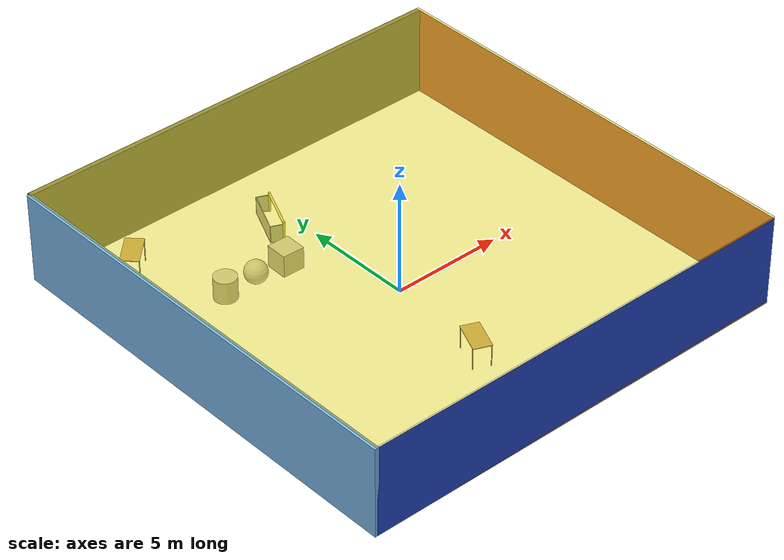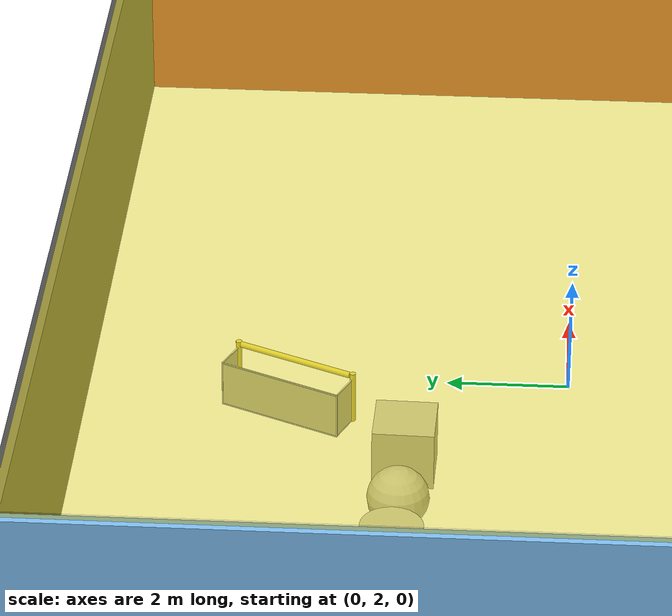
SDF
<sdf version="1.4">
 <world name="default">
  <physics type="ode">
   <max_step_size>0.001</max_step_size>
   <real_time_factor>1</real_time_factor>
   <real_time_update_rate>1000</real_time_update_rate>
   <gravity>0 0 -9.8</gravity>
  </physics>
  <scene><ambient>0.4 0.4 0.4 1</ambient><background>0.7 0.7 0.7 1</background><shadows>1</shadows></scene>
  <model name="Surrounding">
   <static>1</static>
   <link name="Ceiling">
    <collision name="Ceiling_Collision"><geometry><box><size>20 20 0.1</size></box></geometry></collision>
    <visual name="Ceiling_Visual">
     <geometry><box><size>20 20 0.1</size></box></geometry>
     <material>
      <script>
       <uri>file://media/materials/scripts/gazebo.material</uri>
       <name>Gazebo/YellowTransparent</name>
      </script>
     </material>
    </visual>
    <pose>0 0 4.05 0 0 0</pose>
   </link>
   <link name="Wall_South">
    <collision name="Wall_South_Collision">
     <geometry><box><size>20 0 4</size></box></geometry>
     <pose>0 0 2 0 -0 0</pose>
    </collision>
    <visual name="Wall_South_Visual">
     <pose>0 0 2 0 -0 0</pose>
     <geometry><box><size>20 0 4</size></box></geometry>
     <material>
      <script><uri>file://media/materials/scripts/gazebo.material</uri><name>Gazebo/BlueLaser</name></script>
     </material>
    </visual>
    <velocity_decay><linear>0</linear><angular>0</angular></velocity_decay>
    <pose>0 -10 0 0 -0 0</pose>
   </link>
   <link name="Wall_East">
    <collision name="Wall_21_Collision">
     <geometry><box><size>20 0 4</size></box></geometry>
     <pose>0 0 2 0 -0 0</pose>
    </collision>
    <visual name="Wall_21_Visual">
     <pose>0 0 2 0 -0 0</pose>
     <geometry><box><size>20 0 4</size></box></geometry>
     <material>
      <script><uri>file://media/materials/scripts/gazebo.material</uri><name>Gazebo/Red</name></script>
     </material>
    </visual>
    <velocity_decay><linear>0</linear><angular>0</angular></velocity_decay>
    <pose>10 0 0 0 -0 1.5708</pose>
   </link>
   <link name="Wall_North">
    <collision name="Wall_22_Collision">
     <geometry><box><size>20 0.2 4</size></box></geometry>
     <pose>0 0 2 0 -0 0</pose>
    </collision>
    <visual name="Wall_22_Visual">
     <pose>0 0 2 0 -0 0</pose>
     <geometry><box><size>20 0.2 4</size></box></geometry>
     <material>
      <script><uri>file://media/materials/scripts/gazebo.material</uri><name>Gazebo/DarkGrey</name></script>
     </material>
    </visual>
    <velocity_decay><linear>0</linear><angular>0</angular></velocity_decay>
    <pose>0 10 0 0 -0 0</pose>
   </link>
   <link name="Wall_West">
    <collision name="Wall_23_Collision">
     <geometry><box><size>20 0.2 4</size></box></geometry>
     <pose>0 0 2 0 -0 0</pose>
    </collision>
    <visual name="Wall_23_Visual">
     <pose>0 0 2 0 -0 0</pose>
     <geometry><box><size>20 0.2 4</size></box></geometry>
     <material>
      <script><uri>file://media/materials/scripts/gazebo.material</uri><name>Gazebo/SkyBlue</name></script>
     </material>
    </visual>
    <velocity_decay><linear>0</linear><angular>0</angular></velocity_decay>
    <pose>-10 0 0 0 0 -1.5708</pose>
   </link>
   <link name="Ground_link">
    <collision name="collision">
     <pose>0 0 .05 0 -0 0</pose>
     <geometry><box><size>20 20 0.1</size></box></geometry>
    </collision>
    <visual name="visual">
     <pose>0 0 .05 0 -0 0</pose>
     <geometry><box><size>20 20 0.1</size></box></geometry>
     <material>
      <script>
       <uri>file://media/materials/scripts/gazebo.material</uri>
       <name>Gazebo/OrangeTransparent</name>
      </script>
     </material>
    </visual>
   </link>
   <static>1</static>
  </model>
  <spherical_coordinates>
   <surface_model>EARTH_WGS84</surface_model>
   <latitude_deg>0</latitude_deg>
   <longitude_deg>0</longitude_deg>
   <elevation>0</elevation>
   <heading_deg>0</heading_deg>
  </spherical_coordinates>
  <light name="lightball_0" type="diffuse">
   <diffuse>0.8 0.8 0.8 1</diffuse>
   <specular>0.2 0.2 0.2 1</specular>
   <attenuation>
    <range>100</range>
    <constant>0.7</constant>
    <linear>0.01</linear>
    <quadratic>0.001</quadratic>
   </attenuation>
   <direction>-0.5 0.1 -0.9</direction>
   <pose>-2.04815512258 2.62135242565 3.56098367969 0 0 0</pose>
  </light>
  <light name="lightball_1" type="diffuse">
   <diffuse>0.8 0.8 0.8 1</diffuse>
   <specular>0.2 0.2 0.2 1</specular>
   <attenuation>
    <range>100</range>
    <constant>0.7</constant>
    <linear>0.01</linear>
    <quadratic>0.001</quadratic>
   </attenuation>
   <direction>-0.5 0.1 -0.9</direction>
   <pose>7.38648748695 -4.45735627577 2.44099372635 0 0 0</pose>
  </light>
  <light name="lightball_2" type="diffuse">
   <diffuse>0.8 0.8 0.8 1</diffuse>
   <specular>0.2 0.2 0.2 1</specular>
   <attenuation>
    <range>100</range>
    <constant>0.7</constant>
    <linear>0.01</linear>
    <quadratic>0.001</quadratic>
   </attenuation>
   <direction>-0.5 0.1 -0.9</direction>
   <pose>-2.62832832213 -7.83274261538 1.82869781187 0 0 0</pose>
  </light>
  <light name="lightball_3" type="diffuse">
   <diffuse>0.8 0.8 0.8 1</diffuse>
   <specular>0.2 0.2 0.2 1</specular>
   <attenuation>
    <range>100</range>
    <constant>0.7</constant>
    <linear>0.01</linear>
    <quadratic>0.001</quadratic>
   </attenuation>
   <direction>-0.5 0.1 -0.9</direction>
   <pose>8.67669815024 -0.00433558313524 0.612967910002 0 0 0</pose>
  </light>
  <light name="lightball_4" type="diffuse">
   <diffuse>0.8 0.8 0.8 1</diffuse>
   <specular>0.2 0.2 0.2 1</specular>
   <attenuation>
    <range>100</range>
    <constant>0.7</constant>
    <linear>0.01</linear>
    <quadratic>0.001</quadratic>
   </attenuation>
   <direction>-0.5 0.1 -0.9</direction>
   <pose>1.04313499885 -0.63495099771 0.567227123398 0 0 0</pose>
  </light>
  <light name="lightball_5" type="diffuse">
   <diffuse>0.8 0.8 0.8 1</diffuse>
   <specular>0.2 0.2 0.2 1</specular>
   <attenuation>
    <range>100</range>
    <constant>0.7</constant>
    <linear>0.01</linear>
    <quadratic>0.001</quadratic>
   </attenuation>
   <direction>-0.5 0.1 -0.9</direction>
   <pose>-4.37704662416 5.08484236982 2.41175693146 0 0 0</pose>
  </light>
  <light name="lightball_6" type="diffuse">
   <diffuse>0.8 0.8 0.8 1</diffuse>
   <specular>0.2 0.2 0.2 1</specular>
   <attenuation>
    <range>100</range>
    <constant>0.7</constant>
    <linear>0.01</linear>
    <quadratic>0.001</quadratic>
   </attenuation>
   <direction>-0.5 0.1 -0.9</direction>
   <pose>9.07037353625 5.55146114087 0.967175226539 0 0 0</pose>
  </light>
  <light name="lightball_7" type="diffuse">
   <diffuse>0.8 0.8 0.8 1</diffuse>
   <specular>0.2 0.2 0.2 1</specular>
   <attenuation>
    <range>100</range>
    <constant>0.7</constant>
    <linear>0.01</linear>
    <quadratic>0.001</quadratic>
   </attenuation>
   <direction>-0.5 0.1 -0.9</direction>
   <pose>-7.68812069249 3.41669696024 2.47993697893 0 0 0</pose>
  </light>
  <light name="lightball_8" type="diffuse">
   <diffuse>0.8 0.8 0.8 1</diffuse>
   <specular>0.2 0.2 0.2 1</specular>
   <attenuation>
    <range>100</range>
    <constant>0.7</constant>
    <linear>0.01</linear>
    <quadratic>0.001</quadratic>
   </attenuation>
   <direction>-0.5 0.1 -0.9</direction>
   <pose>-0.597113550727 6.11395328463 1.24550516984 0 0 0</pose>
  </light>
  <light name="lightball_9" type="diffuse">
   <diffuse>0.8 0.8 0.8 1</diffuse>
   <specular>0.2 0.2 0.2 1</specular>
   <attenuation>
    <range>100</range>
    <constant>0.7</constant>
    <linear>0.01</linear>
    <quadratic>0.001</quadratic>
   </attenuation>
   <direction>-0.5 0.1 -0.9</direction>
   <pose>4.40757137029 -4.93270432133 3.09897604733 0 0 0</pose>
  </light>
  <light name="lightball_10" type="diffuse">
   <diffuse>0.8 0.8 0.8 1</diffuse>
   <specular>0.2 0.2 0.2 1</specular>
   <attenuation>
    <range>100</range>
    <constant>0.7</constant>
    <linear>0.01</linear>
    <quadratic>0.001</quadratic>
   </attenuation>
   <direction>-0.5 0.1 -0.9</direction>
   <pose>0.890717597887 2.32021173471 3.20431974323 0 0 0</pose>
  </light>
  <include><uri>model://table</uri><pose>-6.87223329627 7.91312674173 0 0 0 0.770297522954</pose></include>
  <include>
   <uri>model://textured_shapes</uri>
   <pose>-3.35721270659 4.65743709308 0 0 0 1.54549459502</pose>
  </include>
  <include><uri>model://table</uri><pose>-0.603057995286 -4.954516432 0 0 0 1.16492694759</pose></include>
  <include>
   <uri>model://robocup_3Dsim_goal</uri>
   <pose>-0.777141226914 6.45886990641 0 0 0 2.71982693544</pose>
  </include>
  <include><uri>model://cabinet</uri><pose>5.52850658627 -8.41554982755 0 0 0 2.14260293827</pose></include>
 </world>
</sdf>

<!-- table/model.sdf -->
<sdf version="1.5">
  <model name="table">
    <static>true</static>
    <link name="link">
      <collision name="surface">
        <pose>0 0 1.0 0 0 0</pose>
        <geometry>
          <box>
            <size>1.5 0.8 0.03</size>
          </box>
        </geometry>
        <surface>
          <friction>
            <ode>
              <mu>0.6</mu>
              <mu2>0.6</mu2>
            </ode>
          </friction>
        </surface>
      </collision>
      <visual name="visual1">
        <pose>0 0 1.0 0 0 0</pose>
        <geometry>
          <box>
            <size>1.5 0.8 0.03</size>
          </box>
        </geometry>
        <material>
          <script>
            <uri>model://media/materials/scripts/gazebo.material</uri>
            <name>Gazebo/Wood</name>
          </script>
        </material>
      </visual>
      <collision name="front_left_leg">
        <pose>0.68 0.38 0.5 0 0 0</pose>
        <geometry>
          <cylinder>
            <radius>0.02</radius>
            <length>1.0</length>
          </cylinder>
        </geometry>
      </collision>
      <visual name="front_left_leg">
        <pose>0.68 0.38 0.5 0 0 0</pose>
        <geometry>
          <cylinder>
            <radius>0.02</radius>
            <length>1.0</length>
          </cylinder>
        </geometry>
        <material>
          <script>
            <uri>model://media/materials/scripts/gazebo.material</uri>
            <name>Gazebo/Grey</name>
          </script>
        </material>
      </visual>
      <collision name="front_right_leg">
        <pose>0.68 -0.38 0.5 0 0 0</pose>
        <geometry>
          <cylinder>
            <radius>0.02</radius>
            <length>1.0</length>
          </cylinder>
        </geometry>
      </collision>
      <visual name="front_right_leg">
        <pose>0.68 -0.38 0.5 0 0 0</pose>
        <geometry>
          <cylinder>
            <radius>0.02</radius>
            <length>1.0</length>
          </cylinder>
        </geometry>
        <material>
          <script>
            <uri>model://media/materials/scripts/gazebo.material</uri>
            <name>Gazebo/Grey</name>
          </script>
        </material>
      </visual>
      <collision name="back_right_leg">
        <pose>-0.68 -0.38 0.5 0 0 0</pose>
        <geometry>
          <cylinder>
            <radius>0.02</radius>
            <length>1.0</length>
          </cylinder>
        </geometry>
      </collision>
      <visual name="back_right_leg">
        <pose>-0.68 -0.38 0.5 0 0 0</pose>
        <geometry>
          <cylinder>
            <radius>0.02</radius>
            <length>1.0</length>
          </cylinder>
        </geometry>
        <material>
          <script>
            <uri>model://media/materials/scripts/gazebo.material</uri>
            <name>Gazebo/Grey</name>
          </script>
        </material>
      </visual>
      <collision name="back_left_leg">
        <pose>-0.68 0.38 0.5 0 0 0</pose>
        <geometry>
          <cylinder>
            <radius>0.02</radius>
            <length>1.0</length>
          </cylinder>
        </geometry>
      </collision>
      <visual name="back_left_leg">
        <pose>-0.68 0.38 0.5 0 0 0</pose>
        <geometry>
          <cylinder>
            <radius>0.02</radius>
            <length>1.0</length>
          </cylinder>
        </geometry>
        <material>
          <script>
            <uri>model://media/materials/scripts/gazebo.material</uri>
            <name>Gazebo/Grey</name>
          </script>
        </material>
      </visual>
    </link>
  </model>
</sdf>

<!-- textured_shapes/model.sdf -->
<sdf version="1.6">
  <model name="textured_shapes">
    <pose>0 0 0.5 0 0 0</pose>
    <link name="box">
      <pose>0 -1.5 0 0 0 0</pose>
      <collision name="collision">
        <geometry>
          <box>
            <size>1 1 1</size>
          </box>
        </geometry>
      </collision>
      <visual name="visual">
        <geometry>
          <box>
            <size>1 1 1</size>
          </box>
        </geometry>
        <material>
          <script>
            <uri>model://../model_source/models/textured_shapes/materials/scripts</uri>
            <uri>model://../model_source/models/textured_shapes/materials/textures</uri>
            <name>TexturedShape/Squares</name>
          </script>
        </material>
      </visual>
    </link>
    <link name="sphere">
      <collision name="collision">
        <geometry>
          <sphere>
            <radius>0.5</radius>
          </sphere>
        </geometry>
      </collision>
      <visual name="visual">
        <geometry>
          <sphere>
            <radius>0.5</radius>
          </sphere>
        </geometry>
        <material>
          <script>
            <uri>model://../model_source/models/textured_shapes/materials/scripts</uri>
            <uri>model://../model_source/models/textured_shapes/materials/textures</uri>
            <name>TexturedShape/Squares</name>
          </script>
        </material>
      </visual>
    </link>
    <link name="cylinder">
      <pose>0 1.5 0 0 0 0</pose>
      <collision name="collision">
        <geometry>
          <cylinder>
            <radius>0.5</radius>
            <length>1</length>
          </cylinder>
        </geometry>
      </collision>
      <visual name="visual">
        <geometry>
          <cylinder>
            <radius>0.5</radius>
            <length>1</length>
          </cylinder>
        </geometry>
        <material>
          <script>
            <uri>model://../model_source/models/textured_shapes/materials/scripts</uri>
            <uri>model://../model_source/models/textured_shapes/materials/textures</uri>
            <name>TexturedShape/Squares</name>
          </script>
        </material>
      </visual>
    </link>
  </model>
</sdf>

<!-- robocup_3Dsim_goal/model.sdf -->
<sdf version="1.5">
  <model name="robocup_3d_goal">
    <static>true</static>
    <link name="left_post">
      <pose>0 1.05 0.45 0 0 0</pose>
      <collision name="collision">
        <geometry>
          <cylinder>
            <radius>0.05</radius>
            <length>0.9</length>
          </cylinder>
        </geometry>
      </collision>
      <visual name="visual">
        <geometry>
          <cylinder>
            <radius>0.05</radius>
            <length>0.9</length>
          </cylinder>
        </geometry>
        <material>
          <script>
            <uri>file://media/materials/scripts/gazebo.material</uri>
            <name>Gazebo/ZincYellow</name>
          </script>
        </material>
      </visual>
    </link>
    <link name="left_support_horiz_lower">
      <pose>0.30 1.05 0.01 0 0 0</pose>
      <collision name="collision">
        <geometry>
          <box>
            <size>0.50 0.02 0.02</size>
          </box>
        </geometry>
      </collision>
      <visual name="visual">
        <geometry>
          <box>
            <size>0.50 0.02 0.02</size>
          </box>
        </geometry>
        <material>
          <script>
            <uri>file://media/materials/scripts/gazebo.material</uri>
            <name>Gazebo/White</name>
          </script>
        </material>
      </visual>
    </link>
    <link name="left_support_horiz_upper">
      <pose>0.30 1.05 0.79 0 0 0</pose>
      <collision name="collision">
        <geometry>
          <box>
            <size>0.50 0.02 0.02</size>
          </box>
        </geometry>
      </collision>
      <visual name="visual">
        <geometry>
          <box>
            <size>0.50 0.02 0.02</size>
          </box>
        </geometry>
        <material>
          <script>
            <uri>file://media/materials/scripts/gazebo.material</uri>
            <name>Gazebo/White</name>
          </script>
        </material>
      </visual>
    </link>
    <link name="left_support_vertical">
      <pose>0.56 1.05 0.4 0 1.5708 0</pose>
      <collision name="collision">
        <geometry>
          <box>
            <size>0.80 0.02 0.02</size>
          </box>
        </geometry>
      </collision>
      <visual name="visual">
        <geometry>
          <box>
            <size>0.80 0.02 0.02</size>
          </box>
        </geometry>
        <material>
          <script>
            <uri>file://media/materials/scripts/gazebo.material</uri>
            <name>Gazebo/White</name>
          </script>
        </material>
      </visual>
    </link>
    <link name="right_support_horiz_lower">
      <pose>0.30 -1.05 0.01 0 0 0</pose>
      <collision name="collision">
        <geometry>
          <box>
            <size>0.50 0.02 0.02</size>
          </box>
        </geometry>
      </collision>
      <visual name="visual">
        <geometry>
          <box>
            <size>0.50 0.02 0.02</size>
          </box>
        </geometry>
        <material>
          <script>
            <uri>file://media/materials/scripts/gazebo.material</uri>
            <name>Gazebo/White</name>
          </script>
        </material>
      </visual>
    </link>
    <link name="right_support_horiz_upper">
      <pose>0.30 -1.05 0.79 0 0 0</pose>
      <collision name="collision">
        <geometry>
          <box>
            <size>0.50 0.02 0.02</size>
          </box>
        </geometry>
      </collision>
      <visual name="visual">
        <geometry>
          <box>
            <size>0.50 0.02 0.02</size>
          </box>
        </geometry>
        <material>
          <script>
            <uri>file://media/materials/scripts/gazebo.material</uri>
            <name>Gazebo/White</name>
          </script>
        </material>
      </visual>
    </link>
    <link name="right_support_vertical">
      <pose>0.56 -1.05 0.4 0 1.5708 0</pose>
      <collision name="collision">
        <geometry>
          <box>
            <size>0.80 0.02 0.02</size>
          </box>
        </geometry>
      </collision>
      <visual name="visual">
        <geometry>
          <box>
            <size>0.80 0.02 0.02</size>
          </box>
        </geometry>
        <material>
          <script>
            <uri>file://media/materials/scripts/gazebo.material</uri>
            <name>Gazebo/White</name>
          </script>
        </material>
      </visual>
    </link>
    <link name="center_support_horiz_lower">
      <pose>0.56 0 0.01 0 1.5708 0</pose>
      <collision name="collision">
        <geometry>
          <box>
            <size>0.02 2.08 0.02</size>
          </box>
        </geometry>
      </collision>
      <visual name="visual">
        <geometry>
          <box>
            <size>0.02 2.08 0.02</size>
          </box>
        </geometry>
        <material>
          <script>
            <uri>file://media/materials/scripts/gazebo.material</uri>
            <name>Gazebo/White</name>
          </script>
        </material>
      </visual>
    </link>
    <link name="center_support_horiz_upper">
      <pose>0.56 0 0.79 0 1.5708 0</pose>
      <collision name="collision">
        <geometry>
          <box>
            <size>0.02 2.08 0.02</size>
          </box>
        </geometry>
      </collision>
      <visual name="visual">
        <geometry>
          <box>
            <size>0.02 2.08 0.02</size>
          </box>
        </geometry>
        <material>
          <script>
            <uri>file://media/materials/scripts/gazebo.material</uri>
            <name>Gazebo/White</name>
          </script>
        </material>
      </visual>
    </link>
    <link name="right_post">
      <pose>0 -1.05 0.45 0 0 0</pose>
      <collision name="collision">
        <geometry>
          <cylinder>
            <radius>0.05</radius>
            <length>0.9</length>
          </cylinder>
        </geometry>
      </collision>
      <visual name="visual">
        <geometry>
          <cylinder>
            <radius>0.05</radius>
            <length>0.9</length>
          </cylinder>
        </geometry>
        <material>
          <script>
            <uri>file://media/materials/scripts/gazebo.material</uri>
            <name>Gazebo/ZincYellow</name>
          </script>
        </material>
      </visual>
    </link>
    <link name="crossbar">
      <pose>0 0 0.85 1.57 1.57 0</pose>
      <collision name="collision">
        <geometry>
          <cylinder>
            <radius>0.05</radius>
            <length>2.0</length>
          </cylinder>
        </geometry>
      </collision>
      <visual name="visual">
        <geometry>
          <cylinder>
            <radius>0.05</radius>
            <length>2.0</length>
          </cylinder>
        </geometry>
        <material>
          <script>
            <uri>file://media/materials/scripts/gazebo.material</uri>
            <name>Gazebo/ZincYellow</name>
          </script>
        </material>
      </visual>
    </link>
    <link name="center_net">
      <pose>0.56 0 0.40 0 0 0</pose>
      <collision name="collision">
        <geometry>
          <box>
            <size>0.01 2.1 0.80</size>
          </box>
        </geometry>
      </collision>
      <visual name="visual">
        <geometry>
          <box>
            <size>0.01 2.1 0.80</size>
          </box>
        </geometry>
        <material>
          <script>
            <uri>model://../model_source/models/robocup09_spl_field/materials/scripts/</uri>
            <uri>model://../model_source/models/robocup09_spl_field/materials/textures/</uri>
            <name>RoboCup/Net</name>
          </script>
        </material>
      </visual>
    </link>
    <link name="left_net">
      <pose>0.30 1.05 0.40 0 0 0</pose>
      <collision name="collision">
        <geometry>
          <box>
            <size>0.50 0.01 0.76</size>
          </box>
        </geometry>
      </collision>
      <visual name="visual">
        <geometry>
          <box>
            <size>0.50 0.01 0.76</size>
          </box>
        </geometry>
        <material>
          <script>
            <uri>model://../model_source/models/robocup09_spl_field/materials/scripts/</uri>
            <uri>model://../model_source/models/robocup09_spl_field/materials/textures/</uri>
            <name>RoboCup/Net</name>
          </script>
        </material>
      </visual>
    </link>
    <link name="right_net">
      <pose>0.30 -1.05 0.40 0 0 0</pose>
      <collision name="collision">
        <geometry>
          <box>
            <size>0.50 0.01 0.76</size>
          </box>
        </geometry>
      </collision>
      <visual name="visual">
        <geometry>
          <box>
            <size>0.50 0.01 0.76</size>
          </box>
        </geometry>
        <material>
          <script>
            <uri>model://../model_source/models/robocup09_spl_field/materials/scripts/</uri>
            <uri>model://../model_source/models/robocup09_spl_field/materials/textures/</uri>
            <name>RoboCup/Net</name>
          </script>
        </material>
      </visual>
    </link>
  </model>
</sdf>

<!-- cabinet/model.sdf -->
<sdf version="1.5">
  <model name="cabinet">
    <static>true</static>
    <link name="cabinet_bottom_plate">
      <inertial>
        <pose>0 0 -1 0 0 0</pose>
        <inertia>
          <ixx>2.050000</ixx>
          <ixy>0</ixy>
          <ixz>0</ixz>
          <iyy>2.050000</iyy>
          <iyz>0</iyz>
          <izz>2.050000</izz>
        </inertia>
        <mass>25.000000</mass>
      </inertial>
      <collision name="cabinet_bottom_plate_geom">
        <pose>0 0 0.010000 0 0 0</pose>
        <geometry>
          <box>
            <size>0.450000 0.450000 0.020000</size>
          </box>
        </geometry>
      </collision>
      <visual name="cabinet_bottom_plate_geom_visual">
        <pose>0 0 0.010000 0 0 0</pose>
        <geometry>
          <box>
            <size>0.450000 0.450000 0.020000</size>
          </box>
        </geometry>
        <material>
          <script>
            <uri>model://media/materials/scripts/gazebo.material</uri>
            <name>Gazebo/Wood</name>
          </script>
        </material>
      </visual>
      <collision name="cabinet_bottom_plate_geom_cabinet_back_plate">
        <pose>0.235000 0 0.510000 0 0 0</pose>
        <geometry>
          <box>
            <size>0.020000 0.450000 1.020000</size>
          </box>
        </geometry>
      </collision>
      <visual name="cabinet_bottom_plate_geom_cabinet_back_plate_visual">
        <pose>0.235000 0 0.510000 0 0 0</pose>
        <geometry>
          <box>
            <size>0.020000 0.450000 1.020000</size>
          </box>
        </geometry>
        <material>
          <script>
            <uri>model://media/materials/scripts/gazebo.material</uri>
            <name>Gazebo/Wood</name>
          </script>
        </material>
      </visual>
      <collision name="cabinet_bottom_plate_geom_cabinet_left_plate">
        <pose>0 0.235000 0.510000 0 0 0</pose>
        <geometry>
          <box>
            <size>0.450000 0.020000 1.020000</size>
          </box>
        </geometry>
      </collision>
      <visual name="cabinet_bottom_plate_geom_cabinet_left_plate_visual">
        <pose>0 0.235000 0.510000 0 0 0</pose>
        <geometry>
          <box>
            <size>0.450000 0.020000 1.020000</size>
          </box>
        </geometry>
        <material>
          <script>
            <uri>model://media/materials/scripts/gazebo.material</uri>
            <name>Gazebo/Wood</name>
          </script>
        </material>
      </visual>
      <collision name="cabinet_bottom_plate_geom_cabinet_middle_plate">
        <pose>0 0 0.510000 0 0 0</pose>
        <geometry>
          <box>
            <size>0.450000 0.450000 0.020000</size>
          </box>
        </geometry>
      </collision>
      <visual name="cabinet_bottom_plate_geom_cabinet_middle_plate_visual">
        <pose>0 0 0.510000 0 0 0</pose>
        <geometry>
          <box>
            <size>0.450000 0.450000 0.020000</size>
          </box>
        </geometry>
        <material>
          <script>
            <uri>model://media/materials/scripts/gazebo.material</uri>
            <name>Gazebo/Wood</name>
          </script>
        </material>
      </visual>
      <collision name="cabinet_bottom_plate_geom_cabinet_right_plate">
        <pose>0 -0.235000 0.510000 0 0 0</pose>
        <geometry>
          <box>
            <size>0.450000 0.020000 1.020000</size>
          </box>
        </geometry>
      </collision>
      <visual name="cabinet_bottom_plate_geom_cabinet_right_plate_visual">
        <pose>0 -0.235000 0.510000 0 0 0</pose>
        <geometry>
          <box>
            <size>0.450000 0.020000 1.020000</size>
          </box>
        </geometry>
        <material>
          <script>
            <uri>model://media/materials/scripts/gazebo.material</uri>
            <name>Gazebo/Wood</name>
          </script>
        </material>
      </visual>
      <collision name="cabinet_bottom_plate_geom_cabinet_top_plate">
        <pose>0 0 1.010000 0 0 0</pose>
        <geometry>
          <box>
            <size>0.450000 0.450000 0.020000</size>
          </box>
        </geometry>
      </collision>
      <visual name="cabinet_bottom_plate_geom_cabinet_top_plate_visual">
        <pose>0 0 1.010000 0 0 0</pose>
        <geometry>
          <box>
            <size>0.450000 0.450000 0.020000</size>
          </box>
        </geometry>
        <material>
          <script>
            <uri>model://media/materials/scripts/gazebo.material</uri>
            <name>Gazebo/Wood</name>
          </script>
        </material>
      </visual>
    </link>
  </model>
</sdf>
